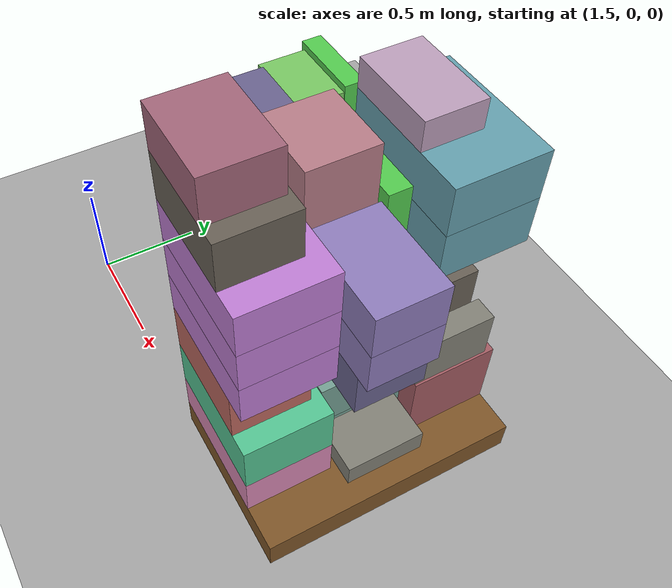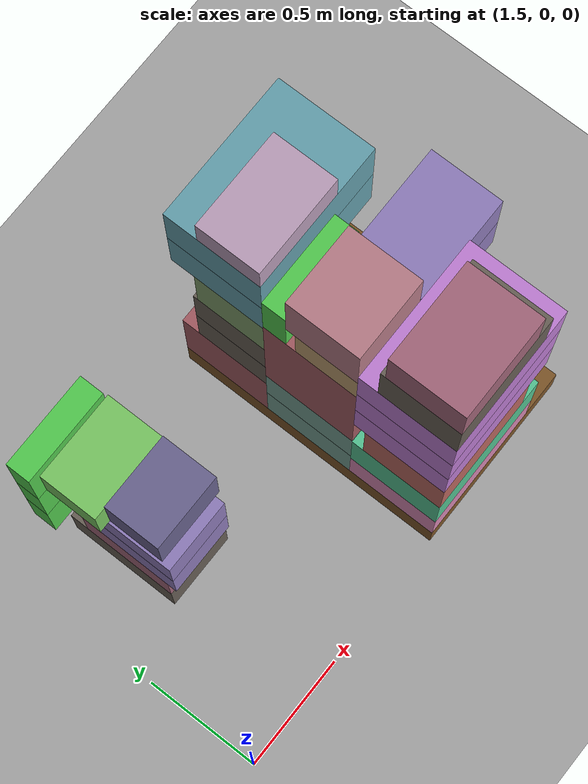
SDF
<sdf version="1.10">
 <world name="pallet_towers">
  <model name="ground_plane">
   <static>true</static>
   <link name="link">
    <collision name="collision">
     <geometry><plane><normal>0 0 1</normal><size>30 30</size></plane></geometry>
     <surface>
      <friction><ode><mu>0.55</mu><mu2>0.55</mu2></ode></friction>
      <bounce><restitution_coefficient>0</restitution_coefficient><threshold>100000</threshold></bounce>
      <contact><ode><kp>1000000</kp><kd>100</kd><max_vel>1</max_vel><min_depth>0.0005</min_depth></ode></contact>
     </surface>
    </collision>
    <visual name="visual">
     <geometry><plane><normal>0 0 1</normal><size>30 30</size></plane></geometry>
     <material><ambient>0.65 0.65 0.65 1</ambient><diffuse>0.65 0.65 0.65 1</diffuse></material>
    </visual>
   </link>
  </model>
  <model name="box_p02_0006_FLOUR_002_FLOUR">
   <static>false</static>
   <pose>1.94 0.84 0.254 0 0 0</pose>
   <link name="body">
    <inertial>
     <mass>15</mass>
     <inertia><ixx>0.3485</ixx><ixy>0</ixy><ixz>0</ixz><iyy>0.1885</iyy><iyz>0</iyz><izz>0.416</izz></inertia>
    </inertial>
    <collision name="collision">
     <geometry><box><size>0.32 0.48 0.22</size></box></geometry>
     <surface>
      <friction><ode><mu>0.55</mu><mu2>0.55</mu2></ode></friction>
      <bounce><restitution_coefficient>0</restitution_coefficient><threshold>100000</threshold></bounce>
      <contact><ode><kp>1000000</kp><kd>100</kd><max_vel>1</max_vel><min_depth>0.0005</min_depth></ode></contact>
     </surface>
    </collision>
    <visual name="visual">
     <geometry><box><size>0.32 0.48 0.22</size></box></geometry>
     <material>
      <ambient>0.411764706 0.380392157 0.341176471 1</ambient>
      <diffuse>0.411764706 0.380392157 0.341176471 1</diffuse>
      <specular>0.05 0.05 0.05 1</specular>
     </material>
    </visual>
   </link>
  </model>
  <model name="box_p02_0010_ICECRM_001_ICECRM">
   <static>false</static>
   <pose>1.93 0.8 0.464 0 0 0</pose>
   <link name="body">
    <inertial>
     <mass>8</mass>
     <inertia>
      <ixx>0.133333333</ixx>
      <ixy>0</ixy>
      <ixz>0</ixz>
      <iyy>0.0866666667</iyy>
      <iyz>0</iyz>
      <izz>0.166666667</izz>
     </inertia>
    </inertial>
    <collision name="collision">
     <geometry><box><size>0.3 0.4 0.2</size></box></geometry>
     <surface>
      <friction><ode><mu>0.55</mu><mu2>0.55</mu2></ode></friction>
      <bounce><restitution_coefficient>0</restitution_coefficient><threshold>100000</threshold></bounce>
      <contact><ode><kp>1000000</kp><kd>100</kd><max_vel>1</max_vel><min_depth>0.0005</min_depth></ode></contact>
     </surface>
    </collision>
    <visual name="visual">
     <geometry><box><size>0.3 0.4 0.2</size></box></geometry>
     <material>
      <ambient>0.643137255 0.403921569 0.482352941 1</ambient>
      <diffuse>0.643137255 0.403921569 0.482352941 1</diffuse>
      <specular>0.05 0.05 0.05 1</specular>
     </material>
    </visual>
   </link>
  </model>
  <model name="box_p02_0018_RICE_001_RICE">
   <static>false</static>
   <pose>1.93 0.78 0.664 0 0 0</pose>
   <link name="body">
    <inertial>
     <mass>20</mass>
     <inertia>
      <ixx>0.389333333</ixx>
      <ixy>0</ixy>
      <ixz>0</ixz>
      <iyy>0.216666667</iyy>
      <iyz>0</iyz>
      <izz>0.472666667</izz>
     </inertia>
    </inertial>
    <collision name="collision">
     <geometry><box><size>0.3 0.44 0.2</size></box></geometry>
     <surface>
      <friction><ode><mu>0.55</mu><mu2>0.55</mu2></ode></friction>
      <bounce><restitution_coefficient>0</restitution_coefficient><threshold>100000</threshold></bounce>
      <contact><ode><kp>1000000</kp><kd>100</kd><max_vel>1</max_vel><min_depth>0.0005</min_depth></ode></contact>
     </surface>
    </collision>
    <visual name="visual">
     <geometry><box><size>0.3 0.44 0.2</size></box></geometry>
     <material>
      <ambient>0.564705882 0.494117647 0.741176471 1</ambient>
      <diffuse>0.564705882 0.494117647 0.741176471 1</diffuse>
      <specular>0.05 0.05 0.05 1</specular>
     </material>
    </visual>
   </link>
  </model>
  <model name="box_p02_0019_RICE_002_RICE">
   <static>false</static>
   <pose>1.93 0.78 0.864 0 0 0</pose>
   <link name="body">
    <inertial>
     <mass>20</mass>
     <inertia>
      <ixx>0.389333333</ixx>
      <ixy>0</ixy>
      <ixz>0</ixz>
      <iyy>0.216666667</iyy>
      <iyz>0</iyz>
      <izz>0.472666667</izz>
     </inertia>
    </inertial>
    <collision name="collision">
     <geometry><box><size>0.3 0.44 0.2</size></box></geometry>
     <surface>
      <friction><ode><mu>0.55</mu><mu2>0.55</mu2></ode></friction>
      <bounce><restitution_coefficient>0</restitution_coefficient><threshold>100000</threshold></bounce>
      <contact><ode><kp>1000000</kp><kd>100</kd><max_vel>1</max_vel><min_depth>0.0005</min_depth></ode></contact>
     </surface>
    </collision>
    <visual name="visual">
     <geometry><box><size>0.3 0.44 0.2</size></box></geometry>
     <material>
      <ambient>0.564705882 0.494117647 0.741176471 1</ambient>
      <diffuse>0.564705882 0.494117647 0.741176471 1</diffuse>
      <specular>0.05 0.05 0.05 1</specular>
     </material>
    </visual>
   </link>
  </model>
  <model name="box_p02_0024_SUGAR_003_SUGAR">
   <static>false</static>
   <pose>1.945 0.715 1.074 0 0 0</pose>
   <link name="body">
    <inertial>
     <mass>10</mass>
     <inertia>
      <ixx>0.0844166667</ixx>
      <ixy>0</ixy>
      <ixz>0</ixz>
      <iyy>0.120416667</iyy>
      <iyz>0</iyz>
      <izz>0.124166667</izz>
     </inertia>
    </inertial>
    <collision name="collision">
     <geometry><box><size>0.31 0.23 0.22</size></box></geometry>
     <surface>
      <friction><ode><mu>0.55</mu><mu2>0.55</mu2></ode></friction>
      <bounce><restitution_coefficient>0</restitution_coefficient><threshold>100000</threshold></bounce>
      <contact><ode><kp>1000000</kp><kd>100</kd><max_vel>1</max_vel><min_depth>0.0005</min_depth></ode></contact>
     </surface>
    </collision>
    <visual name="visual">
     <geometry><box><size>0.31 0.23 0.22</size></box></geometry>
     <material>
      <ambient>0.419607843 0.392156863 0.564705882 1</ambient>
      <diffuse>0.419607843 0.392156863 0.564705882 1</diffuse>
      <specular>0.05 0.05 0.05 1</specular>
     </material>
    </visual>
   </link>
  </model>
  <model name="box_p02_0026_TEA_001_TEA">
   <static>false</static>
   <pose>1.92 0.95 1.064 0 0 0</pose>
   <link name="body">
    <inertial>
     <mass>5</mass>
     <inertia>
      <ixx>0.0406666667</ixx>
      <ixy>0</ixy>
      <ixz>0</ixz>
      <iyy>0.0706666667</iyy>
      <iyz>0</iyz>
      <izz>0.078</izz>
     </inertia>
    </inertial>
    <collision name="collision">
     <geometry><box><size>0.36 0.24 0.2</size></box></geometry>
     <surface>
      <friction><ode><mu>0.55</mu><mu2>0.55</mu2></ode></friction>
      <bounce><restitution_coefficient>0</restitution_coefficient><threshold>100000</threshold></bounce>
      <contact><ode><kp>1000000</kp><kd>100</kd><max_vel>1</max_vel><min_depth>0.0005</min_depth></ode></contact>
     </surface>
    </collision>
    <visual name="visual">
     <geometry><box><size>0.36 0.24 0.2</size></box></geometry>
     <material>
      <ambient>0.478431373 0.788235294 0.388235294 1</ambient>
      <diffuse>0.478431373 0.788235294 0.388235294 1</diffuse>
      <specular>0.05 0.05 0.05 1</specular>
     </material>
    </visual>
   </link>
  </model>
  <model name="box_p02_0032_YOGURT_002_YOGURT">
   <static>false</static>
   <pose>1.895 1.13 0.534 0 0 0</pose>
   <link name="body">
    <inertial>
     <mass>5</mass>
     <inertia>
      <ixx>0.0323333333</ixx>
      <ixy>0</ixy>
      <ixz>0</ixz>
      <iyy>0.0915416667</iyy>
      <iyz>0</iyz>
      <izz>0.0675416667</izz>
     </inertia>
    </inertial>
    <collision name="collision">
     <geometry><box><size>0.39 0.1 0.26</size></box></geometry>
     <surface>
      <friction><ode><mu>0.55</mu><mu2>0.55</mu2></ode></friction>
      <bounce><restitution_coefficient>0</restitution_coefficient><threshold>100000</threshold></bounce>
      <contact><ode><kp>1000000</kp><kd>100</kd><max_vel>1</max_vel><min_depth>0.0005</min_depth></ode></contact>
     </surface>
    </collision>
    <visual name="visual">
     <geometry><box><size>0.39 0.1 0.26</size></box></geometry>
     <material>
      <ambient>0.329411765 0.803921569 0.31372549 1</ambient>
      <diffuse>0.329411765 0.803921569 0.31372549 1</diffuse>
      <specular>0.05 0.05 0.05 1</specular>
     </material>
    </visual>
   </link>
  </model>
  <model name="box_p02_0033_YOGURT_003_YOGURT">
   <static>false</static>
   <pose>1.895 1.13 0.794 0 0 0</pose>
   <link name="body">
    <inertial>
     <mass>5</mass>
     <inertia>
      <ixx>0.0323333333</ixx>
      <ixy>0</ixy>
      <ixz>0</ixz>
      <iyy>0.0915416667</iyy>
      <iyz>0</iyz>
      <izz>0.0675416667</izz>
     </inertia>
    </inertial>
    <collision name="collision">
     <geometry><box><size>0.39 0.1 0.26</size></box></geometry>
     <surface>
      <friction><ode><mu>0.55</mu><mu2>0.55</mu2></ode></friction>
      <bounce><restitution_coefficient>0</restitution_coefficient><threshold>100000</threshold></bounce>
      <contact><ode><kp>1000000</kp><kd>100</kd><max_vel>1</max_vel><min_depth>0.0005</min_depth></ode></contact>
     </surface>
    </collision>
    <visual name="visual">
     <geometry><box><size>0.39 0.1 0.26</size></box></geometry>
     <material>
      <ambient>0.329411765 0.803921569 0.31372549 1</ambient>
      <diffuse>0.329411765 0.803921569 0.31372549 1</diffuse>
      <specular>0.05 0.05 0.05 1</specular>
     </material>
    </visual>
   </link>
  </model>
  <model name="box_p02_0034_YOGURT_004_YOGURT">
   <static>false</static>
   <pose>1.895 1.13 1.054 0 0 0</pose>
   <link name="body">
    <inertial>
     <mass>5</mass>
     <inertia>
      <ixx>0.0323333333</ixx>
      <ixy>0</ixy>
      <ixz>0</ixz>
      <iyy>0.0915416667</iyy>
      <iyz>0</iyz>
      <izz>0.0675416667</izz>
     </inertia>
    </inertial>
    <collision name="collision">
     <geometry><box><size>0.39 0.1 0.26</size></box></geometry>
     <surface>
      <friction><ode><mu>0.55</mu><mu2>0.55</mu2></ode></friction>
      <bounce><restitution_coefficient>0</restitution_coefficient><threshold>100000</threshold></bounce>
      <contact><ode><kp>1000000</kp><kd>100</kd><max_vel>1</max_vel><min_depth>0.0005</min_depth></ode></contact>
     </surface>
    </collision>
    <visual name="visual">
     <geometry><box><size>0.39 0.1 0.26</size></box></geometry>
     <material>
      <ambient>0.329411765 0.803921569 0.31372549 1</ambient>
      <diffuse>0.329411765 0.803921569 0.31372549 1</diffuse>
      <specular>0.05 0.05 0.05 1</specular>
     </material>
    </visual>
   </link>
  </model>
  <model name="pallet_03_P03">
   <static>false</static>
   <pose>3 0.6 0.072 0 0 0</pose>
   <link name="body">
    <inertial>
     <mass>25</mass>
     <inertia>
      <ixx>3.0432</ixx>
      <ixy>0</ixy>
      <ixz>0</ixz>
      <iyy>1.37653333</iyy>
      <iyz>0</iyz>
      <izz>4.33333333</izz>
     </inertia>
    </inertial>
    <collision name="collision">
     <geometry><box><size>0.8 1.2 0.144</size></box></geometry>
     <surface>
      <friction><ode><mu>0.55</mu><mu2>0.55</mu2></ode></friction>
      <bounce><restitution_coefficient>0</restitution_coefficient><threshold>100000</threshold></bounce>
      <contact><ode><kp>1000000</kp><kd>100</kd><max_vel>1</max_vel><min_depth>0.0005</min_depth></ode></contact>
     </surface>
    </collision>
    <visual name="visual">
     <geometry><box><size>0.8 1.2 0.144</size></box></geometry>
     <material>
      <ambient>0.5 0.34 0.16 1</ambient>
      <diffuse>0.5 0.34 0.16 1</diffuse>
      <specular>0.05 0.05 0.05 1</specular>
     </material>
    </visual>
   </link>
  </model>
  <model name="box_p03_0001_POTATO_005_POTATO">
   <static>false</static>
   <pose>2.9 0.2 0.244 0 0 0</pose>
   <link name="body">
    <inertial>
     <mass>25</mass>
     <inertia>
      <ixx>0.416666667</ixx>
      <ixy>0</ixy>
      <ixz>0</ixz>
      <iyy>0.833333333</iyy>
      <iyz>0</iyz>
      <izz>1.08333333</izz>
     </inertia>
    </inertial>
    <collision name="collision">
     <geometry><box><size>0.6 0.4 0.2</size></box></geometry>
     <surface>
      <friction><ode><mu>0.55</mu><mu2>0.55</mu2></ode></friction>
      <bounce><restitution_coefficient>0</restitution_coefficient><threshold>100000</threshold></bounce>
      <contact><ode><kp>1000000</kp><kd>100</kd><max_vel>1</max_vel><min_depth>0.0005</min_depth></ode></contact>
     </surface>
    </collision>
    <visual name="visual">
     <geometry><box><size>0.6 0.4 0.2</size></box></geometry>
     <material>
      <ambient>0.854901961 0.541176471 0.71372549 1</ambient>
      <diffuse>0.854901961 0.541176471 0.71372549 1</diffuse>
      <specular>0.05 0.05 0.05 1</specular>
     </material>
    </visual>
   </link>
  </model>
  <model name="box_p03_0002_BANANA_006_BANANA">
   <static>false</static>
   <pose>2.85 0.6 0.259 0 0 0</pose>
   <link name="body">
    <inertial>
     <mass>18</mass>
     <inertia><ixx>0.31935</ixx><ixy>0</ixy><ixz>0</ixz><iyy>0.45435</iyy><iyz>0</iyz><izz>0.615</izz></inertia>
    </inertial>
    <collision name="collision">
     <geometry><box><size>0.5 0.4 0.23</size></box></geometry>
     <surface>
      <friction><ode><mu>0.55</mu><mu2>0.55</mu2></ode></friction>
      <bounce><restitution_coefficient>0</restitution_coefficient><threshold>100000</threshold></bounce>
      <contact><ode><kp>1000000</kp><kd>100</kd><max_vel>1</max_vel><min_depth>0.0005</min_depth></ode></contact>
     </surface>
    </collision>
    <visual name="visual">
     <geometry><box><size>0.5 0.4 0.23</size></box></geometry>
     <material>
      <ambient>0.462745098 0.635294118 0.584313725 1</ambient>
      <diffuse>0.462745098 0.635294118 0.584313725 1</diffuse>
      <specular>0.05 0.05 0.05 1</specular>
     </material>
    </visual>
   </link>
  </model>
  <model name="box_p03_0003_CHIPS_004_CHIPS">
   <static>false</static>
   <pose>2.9 1 0.319 0 0 0</pose>
   <link name="body">
    <inertial>
     <mass>3.5</mass>
     <inertia>
      <ixx>0.0823958333</ixx>
      <ixy>0</ixy>
      <ixz>0</ixz>
      <iyy>0.140729167</iyy>
      <iyz>0</iyz>
      <izz>0.151666667</izz>
     </inertia>
    </inertial>
    <collision name="collision">
     <geometry><box><size>0.6 0.4 0.35</size></box></geometry>
     <surface>
      <friction><ode><mu>0.55</mu><mu2>0.55</mu2></ode></friction>
      <bounce><restitution_coefficient>0</restitution_coefficient><threshold>100000</threshold></bounce>
      <contact><ode><kp>1000000</kp><kd>100</kd><max_vel>1</max_vel><min_depth>0.0005</min_depth></ode></contact>
     </surface>
    </collision>
    <visual name="visual">
     <geometry><box><size>0.6 0.4 0.35</size></box></geometry>
     <material>
      <ambient>0.643137255 0.360784314 0.388235294 1</ambient>
      <diffuse>0.643137255 0.360784314 0.388235294 1</diffuse>
      <specular>0.05 0.05 0.05 1</specular>
     </material>
    </visual>
   </link>
  </model>
  <model name="box_p03_0004_BANANA_005_BANANA">
   <static>false</static>
   <pose>2.85 0.6 0.489 0 0 0</pose>
   <link name="body">
    <inertial>
     <mass>18</mass>
     <inertia><ixx>0.31935</ixx><ixy>0</ixy><ixz>0</ixz><iyy>0.45435</iyy><iyz>0</iyz><izz>0.615</izz></inertia>
    </inertial>
    <collision name="collision">
     <geometry><box><size>0.5 0.4 0.23</size></box></geometry>
     <surface>
      <friction><ode><mu>0.55</mu><mu2>0.55</mu2></ode></friction>
      <bounce><restitution_coefficient>0</restitution_coefficient><threshold>100000</threshold></bounce>
      <contact><ode><kp>1000000</kp><kd>100</kd><max_vel>1</max_vel><min_depth>0.0005</min_depth></ode></contact>
     </surface>
    </collision>
    <visual name="visual">
     <geometry><box><size>0.5 0.4 0.23</size></box></geometry>
     <material>
      <ambient>0.462745098 0.635294118 0.584313725 1</ambient>
      <diffuse>0.462745098 0.635294118 0.584313725 1</diffuse>
      <specular>0.05 0.05 0.05 1</specular>
     </material>
    </visual>
   </link>
  </model>
  <model name="box_p03_0006_BUTTER_006_BUTTER">
   <static>false</static>
   <pose>3.22 0.58 0.299 0 0 0</pose>
   <link name="body">
    <inertial>
     <mass>10</mass>
     <inertia>
      <ixx>0.118083333</ixx>
      <ixy>0</ixy>
      <ixz>0</ixz>
      <iyy>0.0580833333</iyy>
      <iyz>0</iyz>
      <izz>0.156</izz>
     </inertia>
    </inertial>
    <collision name="collision">
     <geometry><box><size>0.24 0.36 0.11</size></box></geometry>
     <surface>
      <friction><ode><mu>0.55</mu><mu2>0.55</mu2></ode></friction>
      <bounce><restitution_coefficient>0</restitution_coefficient><threshold>100000</threshold></bounce>
      <contact><ode><kp>1000000</kp><kd>100</kd><max_vel>1</max_vel><min_depth>0.0005</min_depth></ode></contact>
     </surface>
    </collision>
    <visual name="visual">
     <geometry><box><size>0.24 0.36 0.11</size></box></geometry>
     <material>
      <ambient>0.51372549 0.509803922 0.466666667 1</ambient>
      <diffuse>0.51372549 0.509803922 0.466666667 1</diffuse>
      <specular>0.05 0.05 0.05 1</specular>
     </material>
    </visual>
   </link>
  </model>
  <model name="box_p03_0007_DIAPER_003_DIAPER">
   <static>false</static>
   <pose>2.9 0.2 0.469 0 0 0</pose>
   <link name="body">
    <inertial>
     <mass>7</mass>
     <inertia>
      <ixx>0.129791667</ixx>
      <ixy>0</ixy>
      <ixz>0</ixz>
      <iyy>0.246458333</iyy>
      <iyz>0</iyz>
      <izz>0.303333333</izz>
     </inertia>
    </inertial>
    <collision name="collision">
     <geometry><box><size>0.6 0.4 0.25</size></box></geometry>
     <surface>
      <friction><ode><mu>0.55</mu><mu2>0.55</mu2></ode></friction>
      <bounce><restitution_coefficient>0</restitution_coefficient><threshold>100000</threshold></bounce>
      <contact><ode><kp>1000000</kp><kd>100</kd><max_vel>1</max_vel><min_depth>0.0005</min_depth></ode></contact>
     </surface>
    </collision>
    <visual name="visual">
     <geometry><box><size>0.6 0.4 0.25</size></box></geometry>
     <material>
      <ambient>0.337254902 0.780392157 0.584313725 1</ambient>
      <diffuse>0.337254902 0.780392157 0.584313725 1</diffuse>
      <specular>0.05 0.05 0.05 1</specular>
     </material>
    </visual>
   </link>
  </model>
  <model name="box_p03_0008_FLOUR_004_FLOUR">
   <static>false</static>
   <pose>2.84 0.96 0.604 0 0 0</pose>
   <link name="body">
    <inertial>
     <mass>15</mass>
     <inertia><ixx>0.1885</ixx><ixy>0</ixy><ixz>0</ixz><iyy>0.3485</iyy><iyz>0</iyz><izz>0.416</izz></inertia>
    </inertial>
    <collision name="collision">
     <geometry><box><size>0.48 0.32 0.22</size></box></geometry>
     <surface>
      <friction><ode><mu>0.55</mu><mu2>0.55</mu2></ode></friction>
      <bounce><restitution_coefficient>0</restitution_coefficient><threshold>100000</threshold></bounce>
      <contact><ode><kp>1000000</kp><kd>100</kd><max_vel>1</max_vel><min_depth>0.0005</min_depth></ode></contact>
     </surface>
    </collision>
    <visual name="visual">
     <geometry><box><size>0.48 0.32 0.22</size></box></geometry>
     <material>
      <ambient>0.411764706 0.380392157 0.341176471 1</ambient>
      <diffuse>0.411764706 0.380392157 0.341176471 1</diffuse>
      <specular>0.05 0.05 0.05 1</specular>
     </material>
    </visual>
   </link>
  </model>
  <model name="box_p03_0009_FLOUR_005_FLOUR">
   <static>false</static>
   <pose>2.84 0.96 0.824 0 0 0</pose>
   <link name="body">
    <inertial>
     <mass>15</mass>
     <inertia><ixx>0.1885</ixx><ixy>0</ixy><ixz>0</ixz><iyy>0.3485</iyy><iyz>0</iyz><izz>0.416</izz></inertia>
    </inertial>
    <collision name="collision">
     <geometry><box><size>0.48 0.32 0.22</size></box></geometry>
     <surface>
      <friction><ode><mu>0.55</mu><mu2>0.55</mu2></ode></friction>
      <bounce><restitution_coefficient>0</restitution_coefficient><threshold>100000</threshold></bounce>
      <contact><ode><kp>1000000</kp><kd>100</kd><max_vel>1</max_vel><min_depth>0.0005</min_depth></ode></contact>
     </surface>
    </collision>
    <visual name="visual">
     <geometry><box><size>0.48 0.32 0.22</size></box></geometry>
     <material>
      <ambient>0.411764706 0.380392157 0.341176471 1</ambient>
      <diffuse>0.411764706 0.380392157 0.341176471 1</diffuse>
      <specular>0.05 0.05 0.05 1</specular>
     </material>
    </visual>
   </link>
  </model>
  <model name="box_p03_0010_ONION_003_ONION">
   <static>false</static>
   <pose>2.85 0.175 0.719 0 0 0</pose>
   <link name="body">
    <inertial>
     <mass>10</mass>
     <inertia>
      <ixx>0.154166667</ixx>
      <ixy>0</ixy>
      <ixz>0</ixz>
      <iyy>0.260416667</iyy>
      <iyz>0</iyz>
      <izz>0.310416667</izz>
     </inertia>
    </inertial>
    <collision name="collision">
     <geometry><box><size>0.5 0.35 0.25</size></box></geometry>
     <surface>
      <friction><ode><mu>0.55</mu><mu2>0.55</mu2></ode></friction>
      <bounce><restitution_coefficient>0</restitution_coefficient><threshold>100000</threshold></bounce>
      <contact><ode><kp>1000000</kp><kd>100</kd><max_vel>1</max_vel><min_depth>0.0005</min_depth></ode></contact>
     </surface>
    </collision>
    <visual name="visual">
     <geometry><box><size>0.5 0.35 0.25</size></box></geometry>
     <material>
      <ambient>0.741176471 0.411764706 0.376470588 1</ambient>
      <diffuse>0.741176471 0.411764706 0.376470588 1</diffuse>
      <specular>0.05 0.05 0.05 1</specular>
     </material>
    </visual>
   </link>
  </model>
  <model name="box_p03_0015_CHIPS_005_CHIPS">
   <static>false</static>
   <pose>2.775 0.6 0.904 0 0 0</pose>
   <link name="body">
    <inertial>
     <mass>3.5</mass>
     <inertia>
      <ixx>0.151666667</ixx>
      <ixy>0</ixy>
      <ixz>0</ixz>
      <iyy>0.140729167</iyy>
      <iyz>0</iyz>
      <izz>0.0823958333</izz>
     </inertia>
    </inertial>
    <collision name="collision">
     <geometry><box><size>0.35 0.4 0.6</size></box></geometry>
     <surface>
      <friction><ode><mu>0.55</mu><mu2>0.55</mu2></ode></friction>
      <bounce><restitution_coefficient>0</restitution_coefficient><threshold>100000</threshold></bounce>
      <contact><ode><kp>1000000</kp><kd>100</kd><max_vel>1</max_vel><min_depth>0.0005</min_depth></ode></contact>
     </surface>
    </collision>
    <visual name="visual">
     <geometry><box><size>0.35 0.4 0.6</size></box></geometry>
     <material>
      <ambient>0.643137255 0.360784314 0.388235294 1</ambient>
      <diffuse>0.643137255 0.360784314 0.388235294 1</diffuse>
      <specular>0.05 0.05 0.05 1</specular>
     </material>
    </visual>
   </link>
  </model>
  <model name="box_p03_0016_BUTTER_004_BUTTER">
   <static>false</static>
   <pose>3.135 0.98 0.614 0 0 0</pose>
   <link name="body">
    <inertial>
     <mass>10</mass>
     <inertia>
      <ixx>0.156</ixx>
      <ixy>0</ixy>
      <ixz>0</ixz>
      <iyy>0.0580833333</iyy>
      <iyz>0</iyz>
      <izz>0.118083333</izz>
     </inertia>
    </inertial>
    <collision name="collision">
     <geometry><box><size>0.11 0.36 0.24</size></box></geometry>
     <surface>
      <friction><ode><mu>0.55</mu><mu2>0.55</mu2></ode></friction>
      <bounce><restitution_coefficient>0</restitution_coefficient><threshold>100000</threshold></bounce>
      <contact><ode><kp>1000000</kp><kd>100</kd><max_vel>1</max_vel><min_depth>0.0005</min_depth></ode></contact>
     </surface>
    </collision>
    <visual name="visual">
     <geometry><box><size>0.11 0.36 0.24</size></box></geometry>
     <material>
      <ambient>0.51372549 0.509803922 0.466666667 1</ambient>
      <diffuse>0.51372549 0.509803922 0.466666667 1</diffuse>
      <specular>0.05 0.05 0.05 1</specular>
     </material>
    </visual>
   </link>
  </model>
  <model name="box_p03_0017_BREAD_008_BREAD">
   <static>false</static>
   <pose>2.9 0.2 0.944 0 0 0</pose>
   <link name="body">
    <inertial>
     <mass>4.5</mass>
     <inertia><ixx>0.075</ixx><ixy>0</ixy><ixz>0</ixz><iyy>0.15</iyy><iyz>0</iyz><izz>0.195</izz></inertia>
    </inertial>
    <collision name="collision">
     <geometry><box><size>0.6 0.4 0.2</size></box></geometry>
     <surface>
      <friction><ode><mu>0.55</mu><mu2>0.55</mu2></ode></friction>
      <bounce><restitution_coefficient>0</restitution_coefficient><threshold>100000</threshold></bounce>
      <contact><ode><kp>1000000</kp><kd>100</kd><max_vel>1</max_vel><min_depth>0.0005</min_depth></ode></contact>
     </surface>
    </collision>
    <visual name="visual">
     <geometry><box><size>0.6 0.4 0.2</size></box></geometry>
     <material>
      <ambient>0.756862745 0.498039216 0.839215686 1</ambient>
      <diffuse>0.756862745 0.498039216 0.839215686 1</diffuse>
      <specular>0.05 0.05 0.05 1</specular>
     </material>
    </visual>
   </link>
  </model>
  <model name="box_p03_0019_BREAD_010_BREAD">
   <static>false</static>
   <pose>2.9 0.2 1.144 0 0 0</pose>
   <link name="body">
    <inertial>
     <mass>4.5</mass>
     <inertia><ixx>0.075</ixx><ixy>0</ixy><ixz>0</ixz><iyy>0.15</iyy><iyz>0</iyz><izz>0.195</izz></inertia>
    </inertial>
    <collision name="collision">
     <geometry><box><size>0.6 0.4 0.2</size></box></geometry>
     <surface>
      <friction><ode><mu>0.55</mu><mu2>0.55</mu2></ode></friction>
      <bounce><restitution_coefficient>0</restitution_coefficient><threshold>100000</threshold></bounce>
      <contact><ode><kp>1000000</kp><kd>100</kd><max_vel>1</max_vel><min_depth>0.0005</min_depth></ode></contact>
     </surface>
    </collision>
    <visual name="visual">
     <geometry><box><size>0.6 0.4 0.2</size></box></geometry>
     <material>
      <ambient>0.756862745 0.498039216 0.839215686 1</ambient>
      <diffuse>0.756862745 0.498039216 0.839215686 1</diffuse>
      <specular>0.05 0.05 0.05 1</specular>
     </material>
    </visual>
   </link>
  </model>
  <model name="box_p03_0020_SUGAR_006_SUGAR">
   <static>false</static>
   <pose>3.215 0.555 0.894 0 0 0</pose>
   <link name="body">
    <inertial>
     <mass>10</mass>
     <inertia>
      <ixx>0.120416667</ixx>
      <ixy>0</ixy>
      <ixz>0</ixz>
      <iyy>0.0844166667</iyy>
      <iyz>0</iyz>
      <izz>0.124166667</izz>
     </inertia>
    </inertial>
    <collision name="collision">
     <geometry><box><size>0.23 0.31 0.22</size></box></geometry>
     <surface>
      <friction><ode><mu>0.55</mu><mu2>0.55</mu2></ode></friction>
      <bounce><restitution_coefficient>0</restitution_coefficient><threshold>100000</threshold></bounce>
      <contact><ode><kp>1000000</kp><kd>100</kd><max_vel>1</max_vel><min_depth>0.0005</min_depth></ode></contact>
     </surface>
    </collision>
    <visual name="visual">
     <geometry><box><size>0.23 0.31 0.22</size></box></geometry>
     <material>
      <ambient>0.419607843 0.392156863 0.564705882 1</ambient>
      <diffuse>0.419607843 0.392156863 0.564705882 1</diffuse>
      <specular>0.05 0.05 0.05 1</specular>
     </material>
    </visual>
   </link>
  </model>
  <model name="box_p03_0021_COFFEE_010_COFFEE">
   <static>false</static>
   <pose>2.8 0.95 1.059 0 0 0</pose>
   <link name="body">
    <inertial>
     <mass>13</mass>
     <inertia>
      <ixx>0.165208333</ixx>
      <ixy>0</ixy>
      <ixz>0</ixz>
      <iyy>0.241041667</iyy>
      <iyz>0</iyz>
      <izz>0.270833333</izz>
     </inertia>
    </inertial>
    <collision name="collision">
     <geometry><box><size>0.4 0.3 0.25</size></box></geometry>
     <surface>
      <friction><ode><mu>0.55</mu><mu2>0.55</mu2></ode></friction>
      <bounce><restitution_coefficient>0</restitution_coefficient><threshold>100000</threshold></bounce>
      <contact><ode><kp>1000000</kp><kd>100</kd><max_vel>1</max_vel><min_depth>0.0005</min_depth></ode></contact>
     </surface>
    </collision>
    <visual name="visual">
     <geometry><box><size>0.4 0.3 0.25</size></box></geometry>
     <material>
      <ambient>0.505882353 0.631372549 0.419607843 1</ambient>
      <diffuse>0.505882353 0.631372549 0.419607843 1</diffuse>
      <specular>0.05 0.05 0.05 1</specular>
     </material>
    </visual>
   </link>
  </model>
  <model name="box_p03_0023_YOGURT_008_YOGURT">
   <static>false</static>
   <pose>3 0.595 0.734 0 0 0</pose>
   <link name="body">
    <inertial>
     <mass>5</mass>
     <inertia>
      <ixx>0.0915416667</ixx>
      <ixy>0</ixy>
      <ixz>0</ixz>
      <iyy>0.0323333333</iyy>
      <iyz>0</iyz>
      <izz>0.0675416667</izz>
     </inertia>
    </inertial>
    <collision name="collision">
     <geometry><box><size>0.1 0.39 0.26</size></box></geometry>
     <surface>
      <friction><ode><mu>0.55</mu><mu2>0.55</mu2></ode></friction>
      <bounce><restitution_coefficient>0</restitution_coefficient><threshold>100000</threshold></bounce>
      <contact><ode><kp>1000000</kp><kd>100</kd><max_vel>1</max_vel><min_depth>0.0005</min_depth></ode></contact>
     </surface>
    </collision>
    <visual name="visual">
     <geometry><box><size>0.1 0.39 0.26</size></box></geometry>
     <material>
      <ambient>0.329411765 0.803921569 0.31372549 1</ambient>
      <diffuse>0.329411765 0.803921569 0.31372549 1</diffuse>
      <specular>0.05 0.05 0.05 1</specular>
     </material>
    </visual>
   </link>
  </model>
  <model name="box_p03_0024_BREAD_009_BREAD">
   <static>false</static>
   <pose>2.9 0.2 1.344 0 0 0</pose>
   <link name="body">
    <inertial>
     <mass>4.5</mass>
     <inertia><ixx>0.075</ixx><ixy>0</ixy><ixz>0</ixz><iyy>0.15</iyy><iyz>0</iyz><izz>0.195</izz></inertia>
    </inertial>
    <collision name="collision">
     <geometry><box><size>0.6 0.4 0.2</size></box></geometry>
     <surface>
      <friction><ode><mu>0.55</mu><mu2>0.55</mu2></ode></friction>
      <bounce><restitution_coefficient>0</restitution_coefficient><threshold>100000</threshold></bounce>
      <contact><ode><kp>1000000</kp><kd>100</kd><max_vel>1</max_vel><min_depth>0.0005</min_depth></ode></contact>
     </surface>
    </collision>
    <visual name="visual">
     <geometry><box><size>0.6 0.4 0.2</size></box></geometry>
     <material>
      <ambient>0.756862745 0.498039216 0.839215686 1</ambient>
      <diffuse>0.756862745 0.498039216 0.839215686 1</diffuse>
      <specular>0.05 0.05 0.05 1</specular>
     </material>
    </visual>
   </link>
  </model>
  <model name="box_p03_0025_RICE_006_RICE">
   <static>false</static>
   <pose>3.17 0.55 1.104 0 0 0</pose>
   <link name="body">
    <inertial>
     <mass>20</mass>
     <inertia>
      <ixx>0.216666667</ixx>
      <ixy>0</ixy>
      <ixz>0</ixz>
      <iyy>0.389333333</iyy>
      <iyz>0</iyz>
      <izz>0.472666667</izz>
     </inertia>
    </inertial>
    <collision name="collision">
     <geometry><box><size>0.44 0.3 0.2</size></box></geometry>
     <surface>
      <friction><ode><mu>0.55</mu><mu2>0.55</mu2></ode></friction>
      <bounce><restitution_coefficient>0</restitution_coefficient><threshold>100000</threshold></bounce>
      <contact><ode><kp>1000000</kp><kd>100</kd><max_vel>1</max_vel><min_depth>0.0005</min_depth></ode></contact>
     </surface>
    </collision>
    <visual name="visual">
     <geometry><box><size>0.44 0.3 0.2</size></box></geometry>
     <material>
      <ambient>0.564705882 0.494117647 0.741176471 1</ambient>
      <diffuse>0.564705882 0.494117647 0.741176471 1</diffuse>
      <specular>0.05 0.05 0.05 1</specular>
     </material>
    </visual>
   </link>
  </model>
  <model name="box_p03_0026_APPLES_006_APPLES">
   <static>false</static>
   <pose>2.9 1 1.294 0 0 0</pose>
   <link name="body">
    <inertial>
     <mass>12</mass>
     <inertia><ixx>0.2084</ixx><ixy>0</ixy><ixz>0</ixz><iyy>0.4084</iyy><iyz>0</iyz><izz>0.52</izz></inertia>
    </inertial>
    <collision name="collision">
     <geometry><box><size>0.6 0.4 0.22</size></box></geometry>
     <surface>
      <friction><ode><mu>0.55</mu><mu2>0.55</mu2></ode></friction>
      <bounce><restitution_coefficient>0</restitution_coefficient><threshold>100000</threshold></bounce>
      <contact><ode><kp>1000000</kp><kd>100</kd><max_vel>1</max_vel><min_depth>0.0005</min_depth></ode></contact>
     </surface>
    </collision>
    <visual name="visual">
     <geometry><box><size>0.6 0.4 0.22</size></box></geometry>
     <material>
      <ambient>0.4 0.635294118 0.68627451 1</ambient>
      <diffuse>0.4 0.635294118 0.68627451 1</diffuse>
      <specular>0.05 0.05 0.05 1</specular>
     </material>
    </visual>
   </link>
  </model>
  <model name="box_p03_0027_HONEY_003_HONEY">
   <static>false</static>
   <pose>2.765 0.53 1.289 0 0 0</pose>
   <link name="body">
    <inertial>
     <mass>8</mass>
     <inertia>
      <ixx>0.0643333333</ixx>
      <ixy>0</ixy>
      <ixz>0</ixz>
      <iyy>0.0918666667</iyy>
      <iyz>0</iyz>
      <izz>0.117666667</izz>
     </inertia>
    </inertial>
    <collision name="collision">
     <geometry><box><size>0.33 0.26 0.17</size></box></geometry>
     <surface>
      <friction><ode><mu>0.55</mu><mu2>0.55</mu2></ode></friction>
      <bounce><restitution_coefficient>0</restitution_coefficient><threshold>100000</threshold></bounce>
      <contact><ode><kp>1000000</kp><kd>100</kd><max_vel>1</max_vel><min_depth>0.0005</min_depth></ode></contact>
     </surface>
    </collision>
    <visual name="visual">
     <geometry><box><size>0.33 0.26 0.17</size></box></geometry>
     <material>
      <ambient>0.752941176 0.623529412 0.443137255 1</ambient>
      <diffuse>0.752941176 0.623529412 0.443137255 1</diffuse>
      <specular>0.05 0.05 0.05 1</specular>
     </material>
    </visual>
   </link>
  </model>
  <model name="box_p03_0028_RICE_005_RICE">
   <static>false</static>
   <pose>3.17 0.55 1.304 0 0 0</pose>
   <link name="body">
    <inertial>
     <mass>20</mass>
     <inertia>
      <ixx>0.216666667</ixx>
      <ixy>0</ixy>
      <ixz>0</ixz>
      <iyy>0.389333333</iyy>
      <iyz>0</iyz>
      <izz>0.472666667</izz>
     </inertia>
    </inertial>
    <collision name="collision">
     <geometry><box><size>0.44 0.3 0.2</size></box></geometry>
     <surface>
      <friction><ode><mu>0.55</mu><mu2>0.55</mu2></ode></friction>
      <bounce><restitution_coefficient>0</restitution_coefficient><threshold>100000</threshold></bounce>
      <contact><ode><kp>1000000</kp><kd>100</kd><max_vel>1</max_vel><min_depth>0.0005</min_depth></ode></contact>
     </surface>
    </collision>
    <visual name="visual">
     <geometry><box><size>0.44 0.3 0.2</size></box></geometry>
     <material>
      <ambient>0.564705882 0.494117647 0.741176471 1</ambient>
      <diffuse>0.564705882 0.494117647 0.741176471 1</diffuse>
      <specular>0.05 0.05 0.05 1</specular>
     </material>
    </visual>
   </link>
  </model>
  <model name="box_p03_0029_APPLES_009_APPLES">
   <static>false</static>
   <pose>2.9 1 1.514 0 0 0</pose>
   <link name="body">
    <inertial>
     <mass>12</mass>
     <inertia><ixx>0.2084</ixx><ixy>0</ixy><ixz>0</ixz><iyy>0.4084</iyy><iyz>0</iyz><izz>0.52</izz></inertia>
    </inertial>
    <collision name="collision">
     <geometry><box><size>0.6 0.4 0.22</size></box></geometry>
     <surface>
      <friction><ode><mu>0.55</mu><mu2>0.55</mu2></ode></friction>
      <bounce><restitution_coefficient>0</restitution_coefficient><threshold>100000</threshold></bounce>
      <contact><ode><kp>1000000</kp><kd>100</kd><max_vel>1</max_vel><min_depth>0.0005</min_depth></ode></contact>
     </surface>
    </collision>
    <visual name="visual">
     <geometry><box><size>0.6 0.4 0.22</size></box></geometry>
     <material>
      <ambient>0.4 0.635294118 0.68627451 1</ambient>
      <diffuse>0.4 0.635294118 0.68627451 1</diffuse>
      <specular>0.05 0.05 0.05 1</specular>
     </material>
    </visual>
   </link>
  </model>
  <model name="box_p03_0030_YOGURT_007_YOGURT">
   <static>false</static>
   <pose>2.795 0.75 1.334 0 0 0</pose>
   <link name="body">
    <inertial>
     <mass>5</mass>
     <inertia>
      <ixx>0.0323333333</ixx>
      <ixy>0</ixy>
      <ixz>0</ixz>
      <iyy>0.0915416667</iyy>
      <iyz>0</iyz>
      <izz>0.0675416667</izz>
     </inertia>
    </inertial>
    <collision name="collision">
     <geometry><box><size>0.39 0.1 0.26</size></box></geometry>
     <surface>
      <friction><ode><mu>0.55</mu><mu2>0.55</mu2></ode></friction>
      <bounce><restitution_coefficient>0</restitution_coefficient><threshold>100000</threshold></bounce>
      <contact><ode><kp>1000000</kp><kd>100</kd><max_vel>1</max_vel><min_depth>0.0005</min_depth></ode></contact>
     </surface>
    </collision>
    <visual name="visual">
     <geometry><box><size>0.39 0.1 0.26</size></box></geometry>
     <material>
      <ambient>0.329411765 0.803921569 0.31372549 1</ambient>
      <diffuse>0.329411765 0.803921569 0.31372549 1</diffuse>
      <specular>0.05 0.05 0.05 1</specular>
     </material>
    </visual>
   </link>
  </model>
  <model name="box_p03_0031_FLOUR_006_FLOUR">
   <static>false</static>
   <pose>2.84 0.16 1.554 0 0 0</pose>
   <link name="body">
    <inertial>
     <mass>15</mass>
     <inertia><ixx>0.1885</ixx><ixy>0</ixy><ixz>0</ixz><iyy>0.3485</iyy><iyz>0</iyz><izz>0.416</izz></inertia>
    </inertial>
    <collision name="collision">
     <geometry><box><size>0.48 0.32 0.22</size></box></geometry>
     <surface>
      <friction><ode><mu>0.55</mu><mu2>0.55</mu2></ode></friction>
      <bounce><restitution_coefficient>0</restitution_coefficient><threshold>100000</threshold></bounce>
      <contact><ode><kp>1000000</kp><kd>100</kd><max_vel>1</max_vel><min_depth>0.0005</min_depth></ode></contact>
     </surface>
    </collision>
    <visual name="visual">
     <geometry><box><size>0.48 0.32 0.22</size></box></geometry>
     <material>
      <ambient>0.411764706 0.380392157 0.341176471 1</ambient>
      <diffuse>0.411764706 0.380392157 0.341176471 1</diffuse>
      <specular>0.05 0.05 0.05 1</specular>
     </material>
    </visual>
   </link>
  </model>
  <model name="box_p03_0033_EGGS_005_EGGS">
   <static>false</static>
   <pose>2.765 0.55 1.514 0 0 0</pose>
   <link name="body">
    <inertial>
     <mass>18</mass>
     <inertia><ixx>0.2526</ixx><ixy>0</ixy><ixz>0</ixz><iyy>0.28095</iyy><iyz>0</iyz><izz>0.29835</izz></inertia>
    </inertial>
    <collision name="collision">
     <geometry><box><size>0.33 0.3 0.28</size></box></geometry>
     <surface>
      <friction><ode><mu>0.55</mu><mu2>0.55</mu2></ode></friction>
      <bounce><restitution_coefficient>0</restitution_coefficient><threshold>100000</threshold></bounce>
      <contact><ode><kp>1000000</kp><kd>100</kd><max_vel>1</max_vel><min_depth>0.0005</min_depth></ode></contact>
     </surface>
    </collision>
    <visual name="visual">
     <geometry><box><size>0.33 0.3 0.28</size></box></geometry>
     <material>
      <ambient>0.725490196 0.494117647 0.537254902 1</ambient>
      <diffuse>0.725490196 0.494117647 0.537254902 1</diffuse>
      <specular>0.05 0.05 0.05 1</specular>
     </material>
    </visual>
   </link>
  </model>
  <model name="box_p03_0037_BEER24_004_BEER24">
   <static>false</static>
   <pose>2.8 0.93 1.689 0 0 0</pose>
   <link name="body">
    <inertial>
     <mass>9</mass>
     <inertia><ixx>0.063375</ixx><ixy>0</ixy><ixz>0</ixz><iyy>0.132675</iyy><iyz>0</iyz><izz>0.1707</izz></inertia>
    </inertial>
    <collision name="collision">
     <geometry><box><size>0.4 0.26 0.13</size></box></geometry>
     <surface>
      <friction><ode><mu>0.55</mu><mu2>0.55</mu2></ode></friction>
      <bounce><restitution_coefficient>0</restitution_coefficient><threshold>100000</threshold></bounce>
      <contact><ode><kp>1000000</kp><kd>100</kd><max_vel>1</max_vel><min_depth>0.0005</min_depth></ode></contact>
     </surface>
    </collision>
    <visual name="visual">
     <geometry><box><size>0.4 0.26 0.13</size></box></geometry>
     <material>
      <ambient>0.741176471 0.62745098 0.737254902 1</ambient>
      <diffuse>0.741176471 0.62745098 0.737254902 1</diffuse>
      <specular>0.05 0.05 0.05 1</specular>
     </material>
    </visual>
   </link>
  </model>
  <model name="box_p03_0038_ICECRM_006_ICECRM">
   <static>false</static>
   <pose>2.8 0.15 1.764 0 0 0</pose>
   <link name="body">
    <inertial>
     <mass>8</mass>
     <inertia>
      <ixx>0.0866666667</ixx>
      <ixy>0</ixy>
      <ixz>0</ixz>
      <iyy>0.133333333</iyy>
      <iyz>0</iyz>
      <izz>0.166666667</izz>
     </inertia>
    </inertial>
    <collision name="collision">
     <geometry><box><size>0.4 0.3 0.2</size></box></geometry>
     <surface>
      <friction><ode><mu>0.55</mu><mu2>0.55</mu2></ode></friction>
      <bounce><restitution_coefficient>0</restitution_coefficient><threshold>100000</threshold></bounce>
      <contact><ode><kp>1000000</kp><kd>100</kd><max_vel>1</max_vel><min_depth>0.0005</min_depth></ode></contact>
     </surface>
    </collision>
    <visual name="visual">
     <geometry><box><size>0.4 0.3 0.2</size></box></geometry>
     <material>
      <ambient>0.643137255 0.403921569 0.482352941 1</ambient>
      <diffuse>0.643137255 0.403921569 0.482352941 1</diffuse>
      <specular>0.05 0.05 0.05 1</specular>
     </material>
    </visual>
   </link>
  </model>
 </world>
</sdf>
